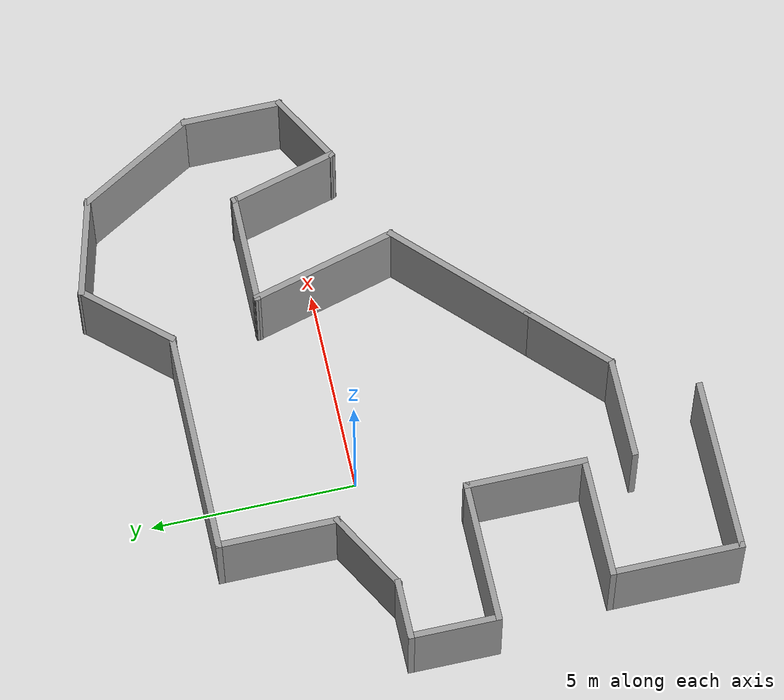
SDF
<?xml version='1.0'?>
<sdf version='1.7'>
  <model name='ares_'>
    <pose>2.18092 -1.38889 0 0 -0 0</pose>
    <link name='Wall_0'>
      <collision name='Wall_0_Collision'>
        <geometry>
          <box>
            <size>5.5 0.15 2.5</size>
          </box>
        </geometry>
        <pose>0 0 1.25 0 -0 0</pose>
      </collision>
      <visual name='Wall_0_Visual'>
        <pose>0 0 1.25 0 -0 0</pose>
        <geometry>
          <box>
            <size>5.5 0.15 2.5</size>
          </box>
        </geometry>
        <material>
          <script>
            <uri>file://media/materials/scripts/gazebo.material</uri>
            <name>Gazebo/Grey</name>
          </script>
          <ambient>1 1 1 1</ambient>
        </material>
        <meta>
          <layer>0</layer>
        </meta>
      </visual>
      <pose>-1.1594 5.02672 0 0 -0 3.14159</pose>
    </link>
    <link name='Wall_1'>
      <collision name='Wall_1_Collision'>
        <geometry>
          <box>
            <size>3 0.15 2.5</size>
          </box>
        </geometry>
        <pose>0 0 1.25 0 -0 0</pose>
      </collision>
      <visual name='Wall_1_Visual'>
        <pose>0 0 1.25 0 -0 0</pose>
        <geometry>
          <box>
            <size>3 0.15 2.5</size>
          </box>
        </geometry>
        <material>
          <script>
            <uri>file://media/materials/scripts/gazebo.material</uri>
            <name>Gazebo/Grey</name>
          </script>
          <ambient>1 1 1 1</ambient>
        </material>
        <meta>
          <layer>0</layer>
        </meta>
      </visual>
      <pose>-3.8344 3.60172 0 0 -0 -1.5708</pose>
    </link>
    <link name='Wall_10'>
      <collision name='Wall_10_Collision'>
        <geometry>
          <box>
            <size>4 0.15 2.5</size>
          </box>
        </geometry>
        <pose>0 0 1.25 0 -0 0</pose>
      </collision>
      <visual name='Wall_10_Visual'>
        <pose>0 0 1.25 0 -0 0</pose>
        <geometry>
          <box>
            <size>4 0.15 2.5</size>
          </box>
        </geometry>
        <material>
          <script>
            <uri>file://media/materials/scripts/gazebo.material</uri>
            <name>Gazebo/Grey</name>
          </script>
          <ambient>1 1 1 1</ambient>
        </material>
        <meta>
          <layer>0</layer>
        </meta>
      </visual>
      <pose>1.67109 -2.00257 0 0 -0 0.785398</pose>
    </link>
    <link name='Wall_11'>
      <collision name='Wall_11_Collision'>
        <geometry>
          <box>
            <size>3.75 0.15 2.5</size>
          </box>
        </geometry>
        <pose>0 0 1.25 0 -0 0</pose>
      </collision>
      <visual name='Wall_11_Visual'>
        <pose>0 0 1.25 0 -0 0</pose>
        <geometry>
          <box>
            <size>3.75 0.15 2.5</size>
          </box>
        </geometry>
        <material>
          <script>
            <uri>file://media/materials/scripts/gazebo.material</uri>
            <name>Gazebo/Grey</name>
          </script>
          <ambient>1 1 1 1</ambient>
        </material>
        <meta>
          <layer>0</layer>
        </meta>
      </visual>
      <pose>2.5664 1.09727 0 0 -0 1.8326</pose>
    </link>
    <link name='Wall_12'>
      <collision name='Wall_12_Collision'>
        <geometry>
          <box>
            <size>2.75 0.15 2.5</size>
          </box>
        </geometry>
        <pose>0 0 1.25 0 -0 0</pose>
      </collision>
      <visual name='Wall_12_Visual'>
        <pose>0 0 1.25 0 -0 0</pose>
        <geometry>
          <box>
            <size>2.75 0.15 2.5</size>
          </box>
        </geometry>
        <material>
          <script>
            <uri>file://media/materials/scripts/gazebo.material</uri>
            <name>Gazebo/Grey</name>
          </script>
          <ambient>1 1 1 1</ambient>
        </material>
        <meta>
          <layer>0</layer>
        </meta>
      </visual>
      <pose>3.40052 2.83594 0 0 -0 0</pose>
    </link>
    <link name='Wall_13'>
      <collision name='Wall_13_Collision'>
        <geometry>
          <box>
            <size>2.75 0.15 2.5</size>
          </box>
        </geometry>
        <pose>0 0 1.25 0 -0 0</pose>
      </collision>
      <visual name='Wall_13_Visual'>
        <pose>0 0 1.25 0 -0 0</pose>
        <geometry>
          <box>
            <size>2.75 0.15 2.5</size>
          </box>
        </geometry>
        <material>
          <script>
            <uri>file://media/materials/scripts/gazebo.material</uri>
            <name>Gazebo/Grey</name>
          </script>
          <ambient>1 1 1 1</ambient>
        </material>
        <meta>
          <layer>0</layer>
        </meta>
      </visual>
      <pose>5.03699 1.58024 0 0 -0 -1.309</pose>
    </link>
    <link name='Wall_14'>
      <collision name='Wall_14_Collision'>
        <geometry>
          <box>
            <size>2 0.15 2.5</size>
          </box>
        </geometry>
        <pose>0 0 1.25 0 -0 0</pose>
      </collision>
      <visual name='Wall_14_Visual'>
        <pose>0 0 1.25 0 -0 0</pose>
        <geometry>
          <box>
            <size>2 0.15 2.5</size>
          </box>
        </geometry>
        <material>
          <script>
            <uri>file://media/materials/scripts/gazebo.material</uri>
            <name>Gazebo/Grey</name>
          </script>
          <ambient>1 1 1 1</ambient>
        </material>
        <meta>
          <layer>0</layer>
        </meta>
      </visual>
      <pose>6.17453 0.787032 0 0 -0 0.523599</pose>
    </link>
    <link name='Wall_15'>
      <collision name='Wall_15_Collision'>
        <geometry>
          <box>
            <size>2.5 0.15 2.5</size>
          </box>
        </geometry>
        <pose>0 0 1.25 0 -0 0</pose>
      </collision>
      <visual name='Wall_15_Visual'>
        <pose>0 0 1.25 0 -0 0</pose>
        <geometry>
          <box>
            <size>2.5 0.15 2.5</size>
          </box>
        </geometry>
        <material>
          <script>
            <uri>file://media/materials/scripts/gazebo.material</uri>
            <name>Gazebo/Grey</name>
          </script>
          <ambient>1 1 1 1</ambient>
        </material>
        <meta>
          <layer>0</layer>
        </meta>
      </visual>
      <pose>6.9756 2.42453 0 0 -0 1.5708</pose>
    </link>
    <link name='Wall_16'>
      <collision name='Wall_16_Collision'>
        <geometry>
          <box>
            <size>3.25 0.15 2.5</size>
          </box>
        </geometry>
        <pose>0 0 1.25 0 -0 0</pose>
      </collision>
      <visual name='Wall_16_Visual'>
        <pose>0 0 1.25 0 -0 0</pose>
        <geometry>
          <box>
            <size>3.25 0.15 2.5</size>
          </box>
        </geometry>
        <material>
          <script>
            <uri>file://media/materials/scripts/gazebo.material</uri>
            <name>Gazebo/Grey</name>
          </script>
          <ambient>1 1 1 1</ambient>
        </material>
        <meta>
          <layer>0</layer>
        </meta>
      </visual>
      <pose>6.2006 4.94187 0 0 -0 2.0944</pose>
    </link>
    <link name='Wall_17'>
      <collision name='Wall_17_Collision'>
        <geometry>
          <box>
            <size>2.5 0.15 2.5</size>
          </box>
        </geometry>
        <pose>0 0 1.25 0 -0 0</pose>
      </collision>
      <visual name='Wall_17_Visual'>
        <pose>0 0 1.25 0 -0 0</pose>
        <geometry>
          <box>
            <size>2.5 0.15 2.5</size>
          </box>
        </geometry>
        <material>
          <script>
            <uri>file://media/materials/scripts/gazebo.material</uri>
            <name>Gazebo/Grey</name>
          </script>
          <ambient>1 1 1 1</ambient>
        </material>
        <meta>
          <layer>0</layer>
        </meta>
      </visual>
      <pose>4.29064 6.58832 0 0 -0 2.87979</pose>
    </link>
    <link name='Wall_18'>
      <collision name='Wall_18_Collision'>
        <geometry>
          <box>
            <size>2.6341 0.15 2.5</size>
          </box>
        </geometry>
        <pose>0 0 1.25 0 -0 0</pose>
      </collision>
      <visual name='Wall_18_Visual'>
        <pose>0 0 1.25 0 -0 0</pose>
        <geometry>
          <box>
            <size>2.6341 0.15 2.5</size>
          </box>
        </geometry>
        <material>
          <script>
            <uri>file://media/materials/scripts/gazebo.material</uri>
            <name>Gazebo/Grey</name>
          </script>
          <ambient>1 1 1 1</ambient>
        </material>
        <meta>
          <layer>0</layer>
        </meta>
      </visual>
      <pose>2.33564 5.95958 0 0 -0 -2.29192</pose>
    </link>
    <link name='Wall_2'>
      <collision name='Wall_2_Collision'>
        <geometry>
          <box>
            <size>2.25 0.15 2.5</size>
          </box>
        </geometry>
        <pose>0 0 1.25 0 -0 0</pose>
      </collision>
      <visual name='Wall_2_Visual'>
        <pose>0 0 1.25 0 -0 0</pose>
        <geometry>
          <box>
            <size>2.25 0.15 2.5</size>
          </box>
        </geometry>
        <material>
          <script>
            <uri>file://media/materials/scripts/gazebo.material</uri>
            <name>Gazebo/Grey</name>
          </script>
          <ambient>1 1 1 1</ambient>
        </material>
        <meta>
          <layer>0</layer>
        </meta>
      </visual>
      <pose>-4.74373 1.65172 0 0 -0 -2.61799</pose>
    </link>
    <link name='Wall_20'>
      <collision name='Wall_20_Collision'>
        <geometry>
          <box>
            <size>3 0.15 2.5</size>
          </box>
        </geometry>
        <pose>0 0 1.25 0 -0 0</pose>
      </collision>
      <visual name='Wall_20_Visual'>
        <pose>0 0 1.25 0 -0 0</pose>
        <geometry>
          <box>
            <size>3 0.15 2.5</size>
          </box>
        </geometry>
        <material>
          <script>
            <uri>file://media/materials/scripts/gazebo.material</uri>
            <name>Gazebo/Grey</name>
          </script>
          <ambient>1 1 1 1</ambient>
        </material>
        <meta>
          <layer>0</layer>
        </meta>
      </visual>
      <pose>-5.07805 -3.82328 0 0 -0 3.14159</pose>
    </link>
    <link name='Wall_21'>
      <collision name='Wall_21_Collision'>
        <geometry>
          <box>
            <size>3.25 0.15 2.5</size>
          </box>
        </geometry>
        <pose>0 0 1.25 0 -0 0</pose>
      </collision>
      <visual name='Wall_21_Visual'>
        <pose>0 0 1.25 0 -0 0</pose>
        <geometry>
          <box>
            <size>3.25 0.15 2.5</size>
          </box>
        </geometry>
        <material>
          <script>
            <uri>file://media/materials/scripts/gazebo.material</uri>
            <name>Gazebo/Grey</name>
          </script>
          <ambient>1 1 1 1</ambient>
        </material>
        <meta>
          <layer>0</layer>
        </meta>
      </visual>
      <pose>-6.50305 -5.37328 0 0 -0 -1.5708</pose>
    </link>
    <link name='Wall_22'>
      <collision name='Wall_22_Collision'>
        <geometry>
          <box>
            <size>4.25 0.15 2.5</size>
          </box>
        </geometry>
        <pose>0 0 1.25 0 -0 0</pose>
      </collision>
      <visual name='Wall_22_Visual'>
        <pose>0 0 1.25 0 -0 0</pose>
        <geometry>
          <box>
            <size>4.25 0.15 2.5</size>
          </box>
        </geometry>
        <material>
          <script>
            <uri>file://media/materials/scripts/gazebo.material</uri>
            <name>Gazebo/Grey</name>
          </script>
          <ambient>1 1 1 1</ambient>
        </material>
        <meta>
          <layer>0</layer>
        </meta>
      </visual>
      <pose>-4.45305 -6.92328 0 0 -0 0</pose>
    </link>
    <link name='Wall_3'>
      <collision name='Wall_3_Collision'>
        <geometry>
          <box>
            <size>1.5 0.15 2.5</size>
          </box>
        </geometry>
        <pose>0 0 1.25 0 -0 0</pose>
      </collision>
      <visual name='Wall_3_Visual'>
        <pose>0 0 1.25 0 -0 0</pose>
        <geometry>
          <box>
            <size>1.5 0.15 2.5</size>
          </box>
        </geometry>
        <material>
          <script>
            <uri>file://media/materials/scripts/gazebo.material</uri>
            <name>Gazebo/Grey</name>
          </script>
          <ambient>1 1 1 1</ambient>
        </material>
        <meta>
          <layer>0</layer>
        </meta>
      </visual>
      <pose>-6.32805 1.12672 0 0 -0 3.14159</pose>
    </link>
    <link name='Wall_4'>
      <collision name='Wall_4_Collision'>
        <geometry>
          <box>
            <size>2.25 0.15 2.5</size>
          </box>
        </geometry>
        <pose>0 0 1.25 0 -0 0</pose>
      </collision>
      <visual name='Wall_4_Visual'>
        <pose>0 0 1.25 0 -0 0</pose>
        <geometry>
          <box>
            <size>2.25 0.15 2.5</size>
          </box>
        </geometry>
        <material>
          <script>
            <uri>file://media/materials/scripts/gazebo.material</uri>
            <name>Gazebo/Grey</name>
          </script>
          <ambient>1 1 1 1</ambient>
        </material>
        <meta>
          <layer>0</layer>
        </meta>
      </visual>
      <pose>-7.00305 0.076718 0 0 -0 -1.5708</pose>
    </link>
    <link name='Wall_5'>
      <collision name='Wall_5_Collision'>
        <geometry>
          <box>
            <size>3.5 0.15 2.5</size>
          </box>
        </geometry>
        <pose>0 0 1.25 0 -0 0</pose>
      </collision>
      <visual name='Wall_5_Visual'>
        <pose>0 0 1.25 0 -0 0</pose>
        <geometry>
          <box>
            <size>3.5 0.15 2.5</size>
          </box>
        </geometry>
        <material>
          <script>
            <uri>file://media/materials/scripts/gazebo.material</uri>
            <name>Gazebo/Grey</name>
          </script>
          <ambient>1 1 1 1</ambient>
        </material>
        <meta>
          <layer>0</layer>
        </meta>
      </visual>
      <pose>-5.32805 -0.973282 0 0 -0 0</pose>
    </link>
    <link name='Wall_6'>
      <collision name='Wall_6_Collision'>
        <geometry>
          <box>
            <size>3 0.15 2.5</size>
          </box>
        </geometry>
        <pose>0 0 1.25 0 -0 0</pose>
      </collision>
      <visual name='Wall_6_Visual'>
        <pose>0 0 1.25 0 -0 0</pose>
        <geometry>
          <box>
            <size>3 0.15 2.5</size>
          </box>
        </geometry>
        <material>
          <script>
            <uri>file://media/materials/scripts/gazebo.material</uri>
            <name>Gazebo/Grey</name>
          </script>
          <ambient>1 1 1 1</ambient>
        </material>
        <meta>
          <layer>0</layer>
        </meta>
      </visual>
      <pose>-3.65305 -2.39828 0 0 -0 -1.5708</pose>
    </link>
    <link name='Wall_8'>
      <collision name='Wall_8_Collision'>
        <geometry>
          <box>
            <size>2.5 0.15 2.5</size>
          </box>
        </geometry>
        <pose>0 0 1.25 0 -0 0</pose>
      </collision>
      <visual name='Wall_8_Visual'>
        <pose>0 0 1.25 0 -0 0</pose>
        <geometry>
          <box>
            <size>2.5 0.15 2.5</size>
          </box>
        </geometry>
        <material>
          <script>
            <uri>file://media/materials/scripts/gazebo.material</uri>
            <name>Gazebo/Grey</name>
          </script>
          <ambient>1 1 1 1</ambient>
        </material>
        <meta>
          <layer>0</layer>
        </meta>
      </visual>
      <pose>-2.52679 -5.02546 0 0 -0 0</pose>
    </link>
    <link name='Wall_9'>
      <collision name='Wall_9_Collision'>
        <geometry>
          <box>
            <size>2.5 0.15 2.5</size>
          </box>
        </geometry>
        <pose>0 0 1.25 0 -0 0</pose>
      </collision>
      <visual name='Wall_9_Visual'>
        <pose>0 0 1.25 0 -0 0</pose>
        <geometry>
          <box>
            <size>2.5 0.15 2.5</size>
          </box>
        </geometry>
        <material>
          <script>
            <uri>file://media/materials/scripts/gazebo.material</uri>
            <name>Gazebo/Grey</name>
          </script>
          <ambient>1 1 1 1</ambient>
        </material>
        <meta>
          <layer>0</layer>
        </meta>
      </visual>
      <pose>-0.520939 -4.19461 0 0 -0 0.785398</pose>
    </link>
    <static>1</static>
  </model>
</sdf>
